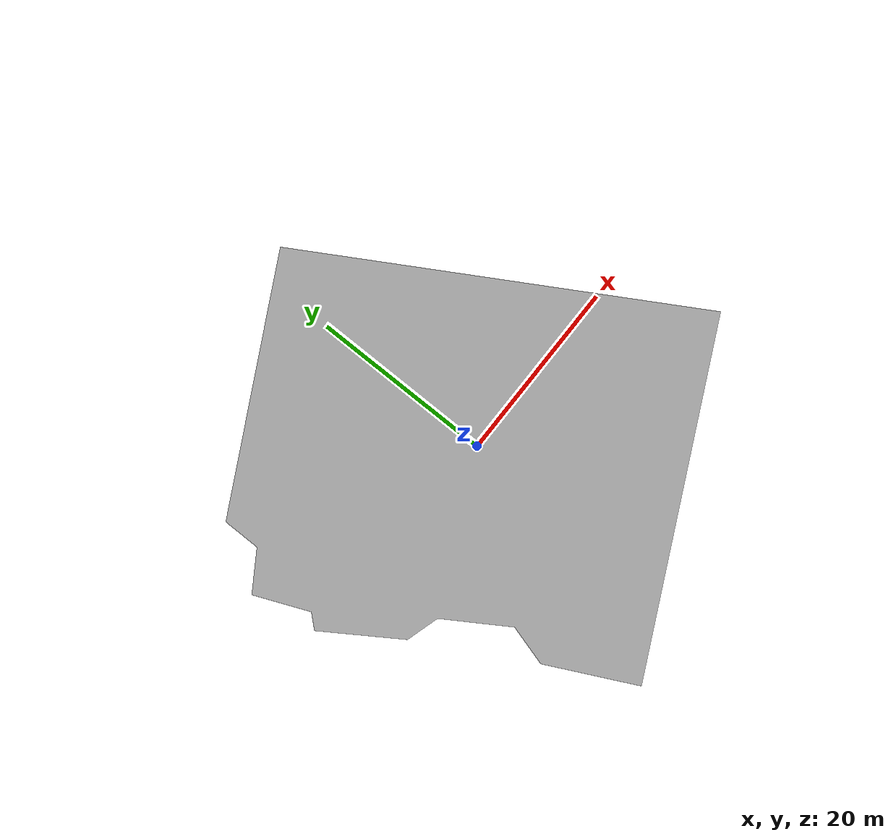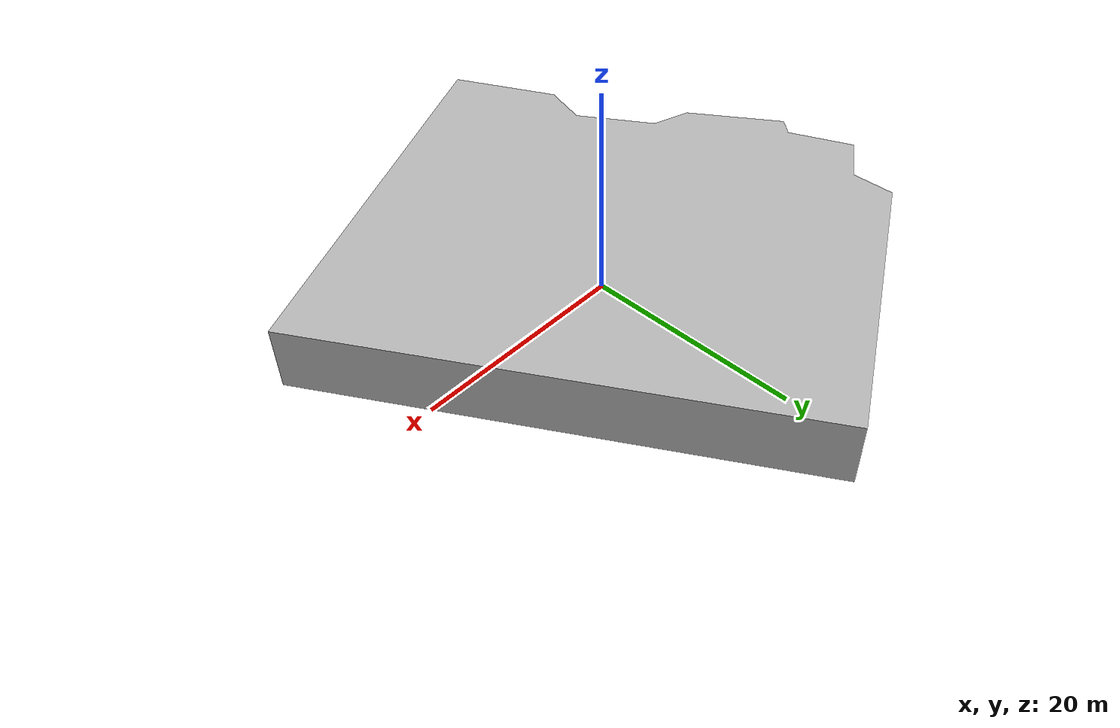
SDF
<?xml version="1.0" ?>
<sdf version="1.7">
  <model name="building_0052_assumed_a_cemiterio">
    <static>true</static>
    <link name="building_link">
      <visual name="building_visual">
        <geometry>
          <mesh>
            <uri>model://building_0052_assumed_a_cemiterio/meshes/construction_0052_assumed_A_Cemiterio_h6m.obj</uri>
          </mesh>
        </geometry>
      </visual>
    <collision name="building_collision">
      <geometry>
        <mesh>
          <uri>model://building_0052_assumed_a_cemiterio/meshes/construction_0052_assumed_A_Cemiterio_h6m.obj</uri>
        </mesh>
      </geometry>
    </collision>
    </link>
  </model>
</sdf>
